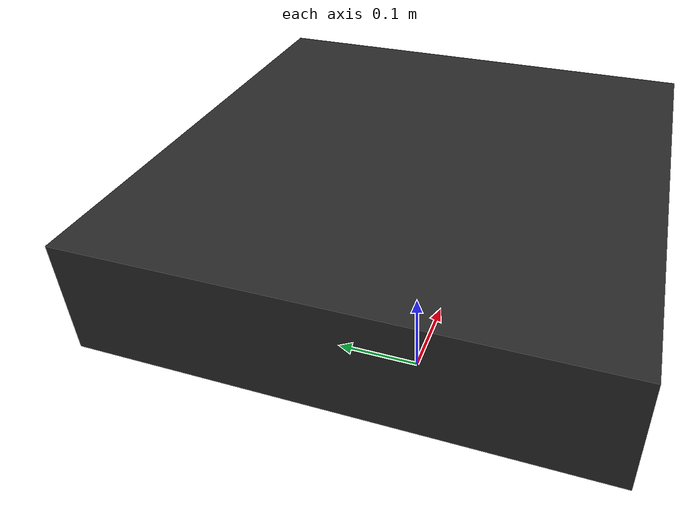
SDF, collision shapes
<?xml version="1.0" encoding="UTF-8"?>
<sdf version='1.9'>
  <model name='fire_px4vision'>
    <pose>0 0 .24 0 0 0</pose>
    <self_collide>false</self_collide>
    <static>false</static>
    <link name='base_link'>
      <pose>0 0 0 0 0 0</pose>
      <inertial>
        <pose>0 0 0 0 0 0</pose>
        <mass>1.5</mass>
        <inertia>
          <ixx>0.029125</ixx>
          <ixy>0</ixy>
          <ixz>0</ixz>
          <iyy>0.029125</iyy>
          <iyz>0</iyz>
          <izz>0.055225</izz>
        </inertia>
      </inertial>
      <gravity>1</gravity>
      <velocity_decay />
      <collision name='base_link_inertia_collision'>
        <pose>0 0 0 0 0 0</pose>
        <geometry>
          <box>
            <size>0.47 0.47 0.11</size>
          </box>
        </geometry>
        <surface>
          <contact>
            <ode>
              <min_depth>0.001</min_depth>
              <max_vel>0</max_vel>
            </ode>
          </contact>
          <friction>
            <ode />
          </friction>
        </surface>
      </collision>
      <visual name='base_link_inertia_visual'>
        <pose>0 0 0 1.5707 0 0.01</pose>
        <geometry>
          <mesh>
            <scale>0.001 0.001 0.001</scale>
            <uri>model://fire_px4vision/meshes/body.dae</uri>
          </mesh>
        </geometry>
        <material> <!-- DarkGrey-->
          <ambient>0.175 0.175 0.175 1.0</ambient>
          <diffuse>0.175 0.175 0.175 1.0</diffuse>
          <specular>0.175 0.175 0.175 1.0</specular>
        </material>
      </visual>
      <sensor name="air_pressure_sensor" type="air_pressure">
        <gz_frame_id>base_link</gz_frame_id>
        <always_on>1</always_on>
        <update_rate>50</update_rate>
        <air_pressure>
          <pressure>
            <noise type="gaussian">
              <mean>0</mean>
              <stddev>0.01</stddev>
            </noise>
          </pressure>
        </air_pressure>
      </sensor>
      <sensor name="magnetometer_sensor" type="magnetometer">
        <gz_frame_id>base_link</gz_frame_id>
        <always_on>1</always_on>
        <update_rate>100</update_rate>
        <magnetometer>
          <!-- TODO: update to fix units and coordinate system when we move past Harmonic -->
          <!-- See https://github.com/gazebosim/gz-sim/pull/2460 -->
          <!-- 3mgauss RMS: NOTE: noise is in tesla but sensor reports data in gauss -->
          <!-- Noise modeled after IIS2MDC -->
          <x>
            <noise type="gaussian">
              <stddev>0.0001</stddev>
            </noise>
          </x>
          <y>
            <noise type="gaussian">
              <stddev>0.0001</stddev>
            </noise>
          </y>
          <z>
            <noise type="gaussian">
              <stddev>0.0001</stddev>
            </noise>
          </z>
        </magnetometer>
      </sensor>
      <sensor name="navsat_sensor" type="navsat">
        <gz_frame_id>base_link</gz_frame_id>
        <always_on>1</always_on>
        <update_rate>30</update_rate>
      </sensor>
      <sensor name="imu_sensor" type="imu">
        <gz_frame_id>base_link</gz_frame_id>
        <pose degrees="true">0 0 0 180 0 0</pose>
        <always_on>1</always_on>
        <update_rate>1000</update_rate>
        <imu>
          <angular_velocity>
            <x>
              <noise type="gaussian">
                <mean>0</mean>
                <stddev>0.00018665</stddev>
                <dynamic_bias_stddev>3.8785e-05</dynamic_bias_stddev>
                <dynamic_bias_correlation_time>1000</dynamic_bias_correlation_time>
              </noise>
            </x>
            <y>
              <noise type="gaussian">
                <mean>0</mean>
                <stddev>0.00018665</stddev>
                <dynamic_bias_stddev>3.8785e-05</dynamic_bias_stddev>
                <dynamic_bias_correlation_time>1000</dynamic_bias_correlation_time>
              </noise>
            </y>
            <z>
              <noise type="gaussian">
                <mean>0</mean>
                <stddev>0.00018665</stddev>
                <dynamic_bias_stddev>3.8785e-05</dynamic_bias_stddev>
                <dynamic_bias_correlation_time>1000</dynamic_bias_correlation_time>
              </noise>
            </z>
          </angular_velocity>
          <linear_acceleration>
            <x>
              <noise type="gaussian">
                <mean>0</mean>
                <stddev>0.00186</stddev>
                <dynamic_bias_stddev>0.006</dynamic_bias_stddev>
                <dynamic_bias_correlation_time>300</dynamic_bias_correlation_time>
              </noise>
            </x>
            <y>
              <noise type="gaussian">
                <mean>0</mean>
                <stddev>0.00186</stddev>
                <dynamic_bias_stddev>0.006</dynamic_bias_stddev>
                <dynamic_bias_correlation_time>300</dynamic_bias_correlation_time>
              </noise>
            </y>
            <z>
              <noise type="gaussian">
                <mean>0</mean>
                <stddev>0.00186</stddev>
                <dynamic_bias_stddev>0.006</dynamic_bias_stddev>
                <dynamic_bias_correlation_time>300</dynamic_bias_correlation_time>
              </noise>
            </z>
          </linear_acceleration>
        </imu>
      </sensor>
    </link>
    <link name='rotor_0'>
      <pose>0.0935 -0.107 0.03 0 0 0</pose>
      <inertial>
        <pose>0 0 0 0 0 0</pose>
        <mass>0.005</mass>
        <inertia>
          <ixx>9.75e-07</ixx>
          <iyy>0.000273104</iyy>
          <izz>0.000274004</izz>
        </inertia>
      </inertial>
      <collision name='rotor_0_collision'>
        <pose>0 0 0 0 0 0</pose>
        <geometry>
          <cylinder>
            <length>0.005</length>
            <radius>0.128</radius>
          </cylinder>
        </geometry>
        <surface>
          <contact>
            <ode>
              <min_depth>0.001</min_depth>
              <max_vel>0</max_vel>
            </ode>
          </contact>
          <friction>
            <ode />
          </friction>
        </surface>
      </collision>
      <visual name='rotor_0_visual'>
        <pose>0 0 0 0 0 0</pose>
        <geometry>
          <mesh>
            <scale>0.6 0.6 0.6</scale>
            <uri>model://fire_px4vision/meshes/iris_prop_ccw.dae</uri>
          </mesh>
        </geometry>
        <material> <!-- Blue -->
          <ambient>0 0 1</ambient>
          <diffuse>0 0 1</diffuse>
          <specular>0.1 0.1 0.1 1</specular>
        </material>
      </visual>
      <gravity>1</gravity>
      <velocity_decay />
    </link>
    <joint name='rotor_0_joint' type='revolute'>
      <child>rotor_0</child>
      <parent>base_link</parent>
      <axis>
        <xyz>0 0 1</xyz>
        <limit>
          <lower>-1e+16</lower>
          <upper>1e+16</upper>
        </limit>
        <dynamics>
          <spring_reference>0</spring_reference>
          <spring_stiffness>0</spring_stiffness>
        </dynamics>
      </axis>
      <sensor name='rotor_0_force_torque' type='force_torque'>
        <always_on>true</always_on>
        <update_rate>100</update_rate>
        <force_torque>
          <frame>child</frame>
          <measure_direction>child_to_parent</measure_direction>
        </force_torque>
      </sensor>
    </joint>
    <link name='rotor_1'>
      <pose>-0.0935 0.107 0.03 0 0 0</pose>
      <inertial>
        <pose>0 0 0 0 0 0</pose>
        <mass>0.005</mass>
        <inertia>
          <ixx>9.75e-07</ixx>
          <iyy>0.000273104</iyy>
          <izz>0.000274004</izz>
        </inertia>
      </inertial>
      <collision name='rotor_1_collision'>
        <pose>0 0 0 0 0 0</pose>
        <geometry>
          <cylinder>
            <length>0.005</length>
            <radius>0.128</radius>
          </cylinder>
        </geometry>
        <surface>
          <contact>
            <ode>
              <min_depth>0.001</min_depth>
              <max_vel>0</max_vel>
            </ode>
          </contact>
          <friction>
            <ode />
          </friction>
        </surface>
      </collision>
      <visual name='rotor_1_visual'>
        <pose>0 0 0 0 0 0</pose>
        <geometry>
          <mesh>
            <scale>0.6 0.6 0.6</scale>
            <uri>model://fire_px4vision/meshes/iris_prop_ccw.dae</uri>
          </mesh>
        </geometry>
        <material> <!-- DarkGrey -->
          <ambient>0.175 0.175 0.175 1.0</ambient>
          <diffuse>0.175 0.175 0.175 1.0</diffuse>
          <specular>0.175 0.175 0.175 1.0</specular>
        </material>
      </visual>
      <gravity>1</gravity>
      <velocity_decay />
    </link>
    <joint name='rotor_1_joint' type='revolute'>
      <child>rotor_1</child>
      <parent>base_link</parent>
      <axis>
        <xyz>0 0 1</xyz>
        <limit>
          <lower>-1e+16</lower>
          <upper>1e+16</upper>
        </limit>
        <dynamics>
          <spring_reference>0</spring_reference>
          <spring_stiffness>0</spring_stiffness>
        </dynamics>
      </axis>
      <sensor name='rotor_1_force_torque' type='force_torque'>
        <always_on>true</always_on>
        <update_rate>100</update_rate>
        <force_torque>
          <frame>child</frame>
          <measure_direction>child_to_parent</measure_direction>
        </force_torque>
      </sensor>
    </joint>
    <link name='rotor_2'>
      <pose>0.0935 0.107 0.03 0 0 0</pose>
      <inertial>
        <pose>0 0 0 0 0 0</pose>
        <mass>0.005</mass>
        <inertia>
          <ixx>9.75e-07</ixx>
          <iyy>0.000273104</iyy>
          <izz>0.000274004</izz>
        </inertia>
      </inertial>
      <collision name='rotor_2_collision'>
        <pose>0 0 0 0 0 0</pose>
        <geometry>
          <cylinder>
            <length>0.005</length>
            <radius>0.128</radius>
          </cylinder>
        </geometry>
        <surface>
          <contact>
            <ode>
              <min_depth>0.001</min_depth>
              <max_vel>0</max_vel>
            </ode>
          </contact>
          <friction>
            <ode />
          </friction>
        </surface>
      </collision>
      <visual name='rotor_2_visual'>
        <pose>0 0 0 0 0 0</pose>
        <geometry>
          <mesh>
            <scale>0.6 0.6 0.6</scale>
            <uri>model://fire_px4vision/meshes/iris_prop_cw.dae</uri>
          </mesh>
        </geometry>
        <material> <!-- Blue -->
          <ambient>0 0 1</ambient>
          <diffuse>0 0 1</diffuse>
          <specular>0.1 0.1 0.1 1</specular>
        </material>
      </visual>
      <gravity>1</gravity>
      <velocity_decay />
    </link>
    <joint name='rotor_2_joint' type='revolute'>
      <child>rotor_2</child>
      <parent>base_link</parent>
      <axis>
        <xyz>0 0 1</xyz>
        <limit>
          <lower>-1e+16</lower>
          <upper>1e+16</upper>
        </limit>
        <dynamics>
          <spring_reference>0</spring_reference>
          <spring_stiffness>0</spring_stiffness>
        </dynamics>
      </axis>
      <sensor name='rotor_2_force_torque' type='force_torque'>
        <always_on>true</always_on>
        <update_rate>100</update_rate>
        <force_torque>
          <frame>child</frame>
          <measure_direction>child_to_parent</measure_direction>
        </force_torque>
      </sensor>
    </joint>
    <link name='rotor_3'>
      <pose>-0.0935 -0.107 0.03 0 0 0</pose>
      <inertial>
        <pose>0 0 0 0 0 0</pose>
        <mass>0.005</mass>
        <inertia>
          <ixx>9.75e-07</ixx>
          <iyy>0.000273104</iyy>
          <izz>0.000274004</izz>
        </inertia>
      </inertial>
      <collision name='rotor_3_collision'>
        <pose>0 0 0 0 0 0</pose>
        <geometry>
          <cylinder>
            <length>0.005</length>
            <radius>0.128</radius>
          </cylinder>
        </geometry>
        <surface>
          <contact>
            <ode>
              <min_depth>0.001</min_depth>
              <max_vel>0</max_vel>
            </ode>
          </contact>
          <friction>
            <ode />
          </friction>
        </surface>
      </collision>
      <visual name='rotor_3_visual'>
        <pose>0 0 0 0 0 0</pose>
        <geometry>
          <mesh>
            <scale>0.6 0.6 0.6</scale>
            <uri>model://fire_px4vision/meshes/iris_prop_cw.dae</uri>
          </mesh>
        </geometry>
        <material> <!-- DarkGrey -->
          <ambient>0.175 0.175 0.175 1.0</ambient>
          <diffuse>0.175 0.175 0.175 1.0</diffuse>
          <specular>0.175 0.175 0.175 1.0</specular>
        </material>
      </visual>
      <gravity>1</gravity>
      <velocity_decay />
    </link>
    <joint name='rotor_3_joint' type='revolute'>
      <child>rotor_3</child>
      <parent>base_link</parent>
      <axis>
        <xyz>0 0 1</xyz>
        <limit>
          <lower>-1e+16</lower>
          <upper>1e+16</upper>
        </limit>
        <dynamics>
          <spring_reference>0</spring_reference>
          <spring_stiffness>0</spring_stiffness>
        </dynamics>
      </axis>
      <sensor name='rotor_3_force_torque' type='force_torque'>
        <always_on>true</always_on>
        <update_rate>100</update_rate>
        <force_torque>
          <frame>child</frame>
          <measure_direction>child_to_parent</measure_direction>
        </force_torque>
      </sensor>
    </joint>
    <plugin filename="gz-sim-joint-state-publisher-system"
      name="gz::sim::systems::JointStatePublisher">
    </plugin>
    <plugin filename="gz-sim-odometry-publisher-system"
      name="gz::sim::systems::OdometryPublisher">
      <odom_frame>world</odom_frame>
      <robot_base_frame>base_link</robot_base_frame>
      <dimensions>3</dimensions>
      <odom_publish_frequency>100</odom_publish_frequency>
      <odom_topic>/model/fire_px4vision/odometry</odom_topic>
    </plugin>

    <plugin filename="gz-sim-lift-drag-system"
      name="gz::sim::systems::LiftDrag">
      <a0>0.3</a0>
      <alpha_stall>1.4</alpha_stall>
      <cla>4.2500</cla>
      <cda>0.10</cda>
      <cma>0.0</cma>
      <cla_stall>-0.025</cla_stall>
      <cda_stall>0.0</cda_stall>
      <cma_stall>0.0</cma_stall>
      <area>0.002</area>
      <air_density>1.2041</air_density>
      <cp>0.084 0 0</cp>
      <forward>0 1 0</forward>
      <upward>0 0 1</upward>
      <link_name>rotor_0</link_name>
    </plugin>
    <plugin filename="gz-sim-lift-drag-system"
      name="gz::sim::systems::LiftDrag">
      <a0>0.3</a0>
      <alpha_stall>1.4</alpha_stall>
      <cla>4.2500</cla>
      <cda>0.10</cda>
      <cma>0.0</cma>
      <cla_stall>-0.025</cla_stall>
      <cda_stall>0.0</cda_stall>
      <cma_stall>0.0</cma_stall>
      <area>0.002</area>
      <air_density>1.2041</air_density>
      <cp>-0.084 0 0</cp>
      <forward>0 -1 0</forward>
      <upward>0 0 1</upward>
      <link_name>rotor_0</link_name>
    </plugin>

    <plugin filename="gz-sim-lift-drag-system"
      name="gz::sim::systems::LiftDrag">
      <a0>0.3</a0>
      <alpha_stall>1.4</alpha_stall>
      <cla>4.2500</cla>
      <cda>0.10</cda>
      <cma>0.0</cma>
      <cla_stall>-0.025</cla_stall>
      <cda_stall>0.0</cda_stall>
      <cma_stall>0.0</cma_stall>
      <area>0.002</area>
      <air_density>1.2041</air_density>
      <cp>0.084 0 0</cp>
      <forward>0 1 0</forward>
      <upward>0 0 1</upward>
      <link_name>rotor_1</link_name>
    </plugin>
    <plugin filename="gz-sim-lift-drag-system"
      name="gz::sim::systems::LiftDrag">
      <a0>0.3</a0>
      <alpha_stall>1.4</alpha_stall>
      <cla>4.2500</cla>
      <cda>0.10</cda>
      <cma>0.0</cma>
      <cla_stall>-0.025</cla_stall>
      <cda_stall>0.0</cda_stall>
      <cma_stall>0.0</cma_stall>
      <area>0.002</area>
      <air_density>1.2041</air_density>
      <cp>-0.084 0 0</cp>
      <forward>0 -1 0</forward>
      <upward>0 0 1</upward>
      <link_name>rotor_1</link_name>
    </plugin>

    <plugin filename="gz-sim-lift-drag-system"
      name="gz::sim::systems::LiftDrag">
      <a0>0.3</a0>
      <alpha_stall>1.4</alpha_stall>
      <cla>4.2500</cla>
      <cda>0.10</cda>
      <cma>0.0</cma>
      <cla_stall>-0.025</cla_stall>
      <cda_stall>0.0</cda_stall>
      <cma_stall>0.0</cma_stall>
      <area>0.002</area>
      <air_density>1.2041</air_density>
      <cp>0.084 0 0</cp>
      <forward>0 -1 0</forward>
      <upward>0 0 1</upward>
      <link_name>rotor_2</link_name>
    </plugin>
    <plugin filename="gz-sim-lift-drag-system"
      name="gz::sim::systems::LiftDrag">
      <a0>0.3</a0>
      <alpha_stall>1.4</alpha_stall>
      <cla>4.2500</cla>
      <cda>0.10</cda>
      <cma>0.0</cma>
      <cla_stall>-0.025</cla_stall>
      <cda_stall>0.0</cda_stall>
      <cma_stall>0.0</cma_stall>
      <area>0.002</area>
      <air_density>1.2041</air_density>
      <cp>-0.084 0 0</cp>
      <forward>0 1 0</forward>
      <upward>0 0 1</upward>
      <link_name>rotor_2</link_name>
    </plugin>

    <plugin filename="gz-sim-lift-drag-system"
      name="gz::sim::systems::LiftDrag">
      <a0>0.3</a0>
      <alpha_stall>1.4</alpha_stall>
      <cla>4.2500</cla>
      <cda>0.10</cda>
      <cma>0.0</cma>
      <cla_stall>-0.025</cla_stall>
      <cda_stall>0.0</cda_stall>
      <cma_stall>0.0</cma_stall>
      <area>0.002</area>
      <air_density>1.2041</air_density>
      <cp>0.084 0 0</cp>
      <forward>0 -1 0</forward>
      <upward>0 0 1</upward>
      <link_name>rotor_3</link_name>
    </plugin>
    <plugin filename="gz-sim-lift-drag-system"
      name="gz::sim::systems::LiftDrag">
      <a0>0.3</a0>
      <alpha_stall>1.4</alpha_stall>
      <cla>4.2500</cla>
      <cda>0.10</cda>
      <cma>0.0</cma>
      <cla_stall>-0.025</cla_stall>
      <cda_stall>0.0</cda_stall>
      <cma_stall>0.0</cma_stall>
      <area>0.002</area>
      <air_density>1.2041</air_density>
      <cp>-0.084 0 0</cp>
      <forward>0 1 0</forward>
      <upward>0 0 1</upward>
      <link_name>rotor_3</link_name>
    </plugin>

    <plugin filename="gz-sim-apply-joint-force-system"
      name="gz::sim::systems::ApplyJointForce">
      <joint_name>rotor_0_joint</joint_name>
    </plugin>
    <plugin filename="gz-sim-apply-joint-force-system"
      name="gz::sim::systems::ApplyJointForce">
      <joint_name>rotor_1_joint</joint_name>
    </plugin>
    <plugin filename="gz-sim-apply-joint-force-system"
      name="gz::sim::systems::ApplyJointForce">
      <joint_name>rotor_2_joint</joint_name>
    </plugin>
    <plugin filename="gz-sim-apply-joint-force-system"
      name="gz::sim::systems::ApplyJointForce">
      <joint_name>rotor_3_joint</joint_name>
    </plugin>

    <plugin name="ArduPilotPlugin" filename="ArduPilotPlugin">
      <fdm_addr>127.0.0.1</fdm_addr>
      <fdm_port_in>9002</fdm_port_in>
      <connectionTimeoutMaxCount>5</connectionTimeoutMaxCount>
      <lock_step>1</lock_step>
      <no_time_sync>1</no_time_sync>
      <have_32_channels>0</have_32_channels>

      <modelXYZToAirplaneXForwardZDown degrees="true">0 0 0 180 0 0</modelXYZToAirplaneXForwardZDown>
      <gazeboXYZToNED degrees="true">0 0 0 180 0 90</gazeboXYZToNED>

      <imuName>base_link::imu_sensor</imuName>

      <control channel="0">
        <jointName>rotor_0_joint</jointName>
        <useForce>1</useForce>
        <multiplier>1000</multiplier>
        <offset>0</offset>
        <servo_min>1100</servo_min>
        <servo_max>1900</servo_max>
        <type>VELOCITY</type>
        <p_gain>0.20</p_gain>
        <i_gain>0</i_gain>
        <d_gain>0</d_gain>
        <i_max>0</i_max>
        <i_min>0</i_min>
        <cmd_max>2.5</cmd_max>
        <cmd_min>-2.5</cmd_min>
        <controlVelocitySlowdownSim>1</controlVelocitySlowdownSim>
      </control>

      <control channel="1">
        <jointName>rotor_1_joint</jointName>
        <useForce>1</useForce>
        <multiplier>1000</multiplier>
        <offset>0</offset>
        <servo_min>1100</servo_min>
        <servo_max>1900</servo_max>
        <type>VELOCITY</type>
        <p_gain>0.20</p_gain>
        <i_gain>0</i_gain>
        <d_gain>0</d_gain>
        <i_max>0</i_max>
        <i_min>0</i_min>
        <cmd_max>2.5</cmd_max>
        <cmd_min>-2.5</cmd_min>
        <controlVelocitySlowdownSim>1</controlVelocitySlowdownSim>
      </control>

      <control channel="2">
        <jointName>rotor_2_joint</jointName>
        <useForce>1</useForce>
        <multiplier>-1000</multiplier>
        <offset>0</offset>
        <servo_min>1100</servo_min>
        <servo_max>1900</servo_max>
        <type>VELOCITY</type>
        <p_gain>0.20</p_gain>
        <i_gain>0</i_gain>
        <d_gain>0</d_gain>
        <i_max>0</i_max>
        <i_min>0</i_min>
        <cmd_max>2.5</cmd_max>
        <cmd_min>-2.5</cmd_min>
        <controlVelocitySlowdownSim>1</controlVelocitySlowdownSim>
      </control>

      <control channel="3">
        <jointName>rotor_3_joint</jointName>
        <useForce>1</useForce>
        <multiplier>-1000</multiplier>
        <offset>0</offset>
        <servo_min>1100</servo_min>
        <servo_max>1900</servo_max>
        <type>VELOCITY</type>
        <p_gain>0.20</p_gain>
        <i_gain>0</i_gain>
        <d_gain>0</d_gain>
        <i_max>0</i_max>
        <i_min>0</i_min>
        <cmd_max>2.5</cmd_max>
        <cmd_min>-2.5</cmd_min>
        <controlVelocitySlowdownSim>1</controlVelocitySlowdownSim>
      </control>
    </plugin>
  </model>
</sdf>
